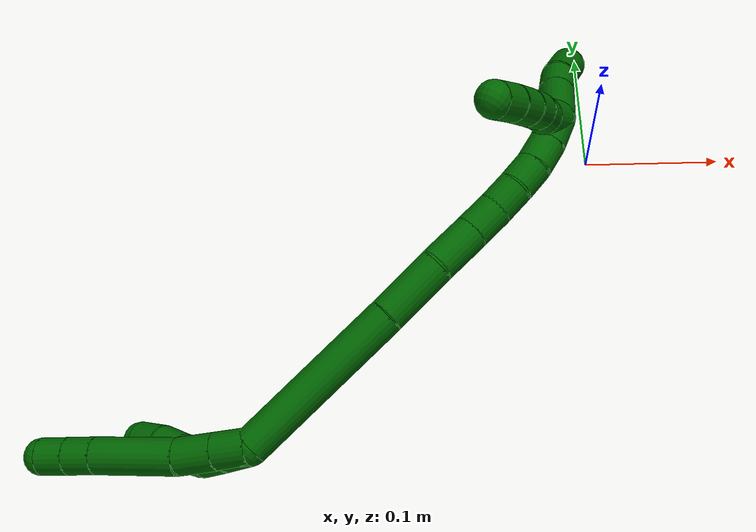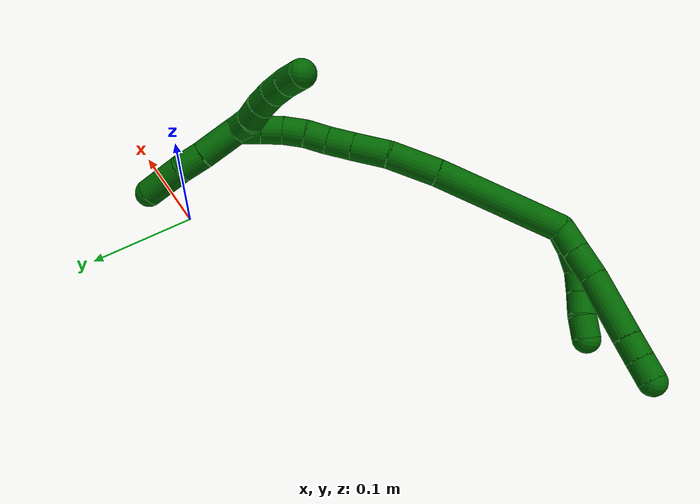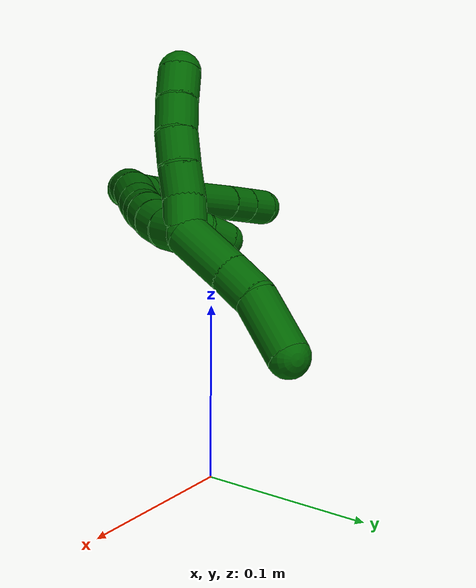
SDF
<sdf version="1.7">
 <world name="default">
  <model name="6">
   <static>0</static>
   <link name="6">
    <collision name="collision-cylinder-e_1_2_8">
     <pose>-0.005046 -0.008728 0.006077 0.962562 -0.443037 -0.234156</pose>
     <geometry><cylinder><radius>0.0125</radius><length>0.023543</length></cylinder></geometry>
     <surface>
      <friction><ode><mu>1.16</mu><mu2>1.16</mu2><slip1>0</slip1><slip2>0</slip2></ode></friction>
      <contact><ode><kp>1e+06</kp><kd>1</kd><max_vel>0</max_vel><min_depth>0.001</min_depth></ode></contact>
     </surface>
    </collision>
    <visual name="visual-cylinder-e_1_2_8">
     <pose>-0.005046 -0.008728 0.006077 0.962562 -0.443037 -0.234156</pose>
     <geometry><cylinder><radius>0.0125</radius><length>0.023543</length></cylinder></geometry>
     <material><ambient>0 0.392157 0.003922 1</ambient></material>
    </visual>
    <collision name="collision-cylinder-e_2_8_9">
     <pose>-0.015963 -0.027379 0.019191 0.953974 -0.449589 -0.235246</pose>
     <geometry><cylinder><radius>0.0125</radius><length>0.027015</length></cylinder></geometry>
     <surface>
      <friction><ode><mu>1.16</mu><mu2>1.16</mu2><slip1>0</slip1><slip2>0</slip2></ode></friction>
      <contact><ode><kp>1e+06</kp><kd>1</kd><max_vel>0</max_vel><min_depth>0.001</min_depth></ode></contact>
     </surface>
    </collision>
    <visual name="visual-cylinder-e_2_8_9">
     <pose>-0.015963 -0.027379 0.019191 0.953974 -0.449589 -0.235246</pose>
     <geometry><cylinder><radius>0.0125</radius><length>0.027015</length></cylinder></geometry>
     <material><ambient>0 0.392157 0.003922 1</ambient></material>
    </visual>
    <collision name="collision-cylinder-e_3_9_10">
     <pose>-0.036803 -0.059712 0.038275 1.07753 -0.53182 -0.322775</pose>
     <geometry><cylinder><radius>0.0125</radius><length>0.05904</length></cylinder></geometry>
     <surface>
      <friction><ode><mu>1.16</mu><mu2>1.16</mu2><slip1>0</slip1><slip2>0</slip2></ode></friction>
      <contact><ode><kp>1e+06</kp><kd>1</kd><max_vel>0</max_vel><min_depth>0.001</min_depth></ode></contact>
     </surface>
    </collision>
    <visual name="visual-cylinder-e_3_9_10">
     <pose>-0.036803 -0.059712 0.038275 1.07753 -0.53182 -0.322775</pose>
     <geometry><cylinder><radius>0.0125</radius><length>0.05904</length></cylinder></geometry>
     <material><ambient>0 0.392157 0.003922 1</ambient></material>
    </visual>
    <collision name="collision-cylinder-e_4_10_11">
     <pose>-0.056709 -0.089854 0.054669 1.05871 -0.507866 -0.301382</pose>
     <geometry><cylinder><radius>0.0125</radius><length>0.020302</length></cylinder></geometry>
     <surface>
      <friction><ode><mu>1.16</mu><mu2>1.16</mu2><slip1>0</slip1><slip2>0</slip2></ode></friction>
      <contact><ode><kp>1e+06</kp><kd>1</kd><max_vel>0</max_vel><min_depth>0.001</min_depth></ode></contact>
     </surface>
    </collision>
    <visual name="visual-cylinder-e_4_10_11">
     <pose>-0.056709 -0.089854 0.054669 1.05871 -0.507866 -0.301382</pose>
     <geometry><cylinder><radius>0.0125</radius><length>0.020302</length></cylinder></geometry>
     <material><ambient>0 0.392157 0.003922 1</ambient></material>
    </visual>
    <collision name="collision-cylinder-e_5_11_6">
     <pose>-0.066524 -0.105237 0.063335 1.05674 -0.506841 -0.300088</pose>
     <geometry><cylinder><radius>0.0125</radius><length>0.0201</length></cylinder></geometry>
     <surface>
      <friction><ode><mu>1.16</mu><mu2>1.16</mu2><slip1>0</slip1><slip2>0</slip2></ode></friction>
      <contact><ode><kp>1e+06</kp><kd>1</kd><max_vel>0</max_vel><min_depth>0.001</min_depth></ode></contact>
     </surface>
    </collision>
    <visual name="visual-cylinder-e_5_11_6">
     <pose>-0.066524 -0.105237 0.063335 1.05674 -0.506841 -0.300088</pose>
     <geometry><cylinder><radius>0.0125</radius><length>0.0201</length></cylinder></geometry>
     <material><ambient>0 0.392157 0.003922 1</ambient></material>
    </visual>
    <collision name="collision-cylinder-e_1_2_12">
     <pose>-0.002327 -0.008244 0.00516 1.01153 -0.234881 -0.130495</pose>
     <geometry><cylinder><radius>0.0125</radius><length>0.02</length></cylinder></geometry>
     <surface>
      <friction><ode><mu>1.16</mu><mu2>1.16</mu2><slip1>0</slip1><slip2>0</slip2></ode></friction>
      <contact><ode><kp>1e+06</kp><kd>1</kd><max_vel>0</max_vel><min_depth>0.001</min_depth></ode></contact>
     </surface>
    </collision>
    <visual name="visual-cylinder-e_1_2_12">
     <pose>-0.002327 -0.008244 0.00516 1.01153 -0.234881 -0.130495</pose>
     <geometry><cylinder><radius>0.0125</radius><length>0.02</length></cylinder></geometry>
     <material><ambient>0 0.392157 0.003922 1</ambient></material>
    </visual>
    <collision name="collision-cylinder-e_2_12_13">
     <pose>-0.005841 -0.025498 0.014492 1.13717 -0.118909 -0.076033</pose>
     <geometry><cylinder><radius>0.0125</radius><length>0.02</length></cylinder></geometry>
     <surface>
      <friction><ode><mu>1.16</mu><mu2>1.16</mu2><slip1>0</slip1><slip2>0</slip2></ode></friction>
      <contact><ode><kp>1e+06</kp><kd>1</kd><max_vel>0</max_vel><min_depth>0.001</min_depth></ode></contact>
     </surface>
    </collision>
    <visual name="visual-cylinder-e_2_12_13">
     <pose>-0.005841 -0.025498 0.014492 1.13717 -0.118909 -0.076033</pose>
     <geometry><cylinder><radius>0.0125</radius><length>0.02</length></cylinder></geometry>
     <material><ambient>0 0.392157 0.003922 1</ambient></material>
    </visual>
    <collision name="collision-cylinder-e_3_13_14">
     <pose>-0.010008 -0.043973 0.019905 1.44043 -0.302692 -0.266063</pose>
     <geometry><cylinder><radius>0.0125</radius><length>0.02</length></cylinder></geometry>
     <surface>
      <friction><ode><mu>1.16</mu><mu2>1.16</mu2><slip1>0</slip1><slip2>0</slip2></ode></friction>
      <contact><ode><kp>1e+06</kp><kd>1</kd><max_vel>0</max_vel><min_depth>0.001</min_depth></ode></contact>
     </surface>
    </collision>
    <visual name="visual-cylinder-e_3_13_14">
     <pose>-0.010008 -0.043973 0.019905 1.44043 -0.302692 -0.266063</pose>
     <geometry><cylinder><radius>0.0125</radius><length>0.02</length></cylinder></geometry>
     <material><ambient>0 0.392157 0.003922 1</ambient></material>
    </visual>
    <collision name="collision-cylinder-e_4_14_15">
     <pose>-0.016792 -0.062676 0.02155 1.52706 -0.390179 -0.373871</pose>
     <geometry><cylinder><radius>0.0125</radius><length>0.02</length></cylinder></geometry>
     <surface>
      <friction><ode><mu>1.16</mu><mu2>1.16</mu2><slip1>0</slip1><slip2>0</slip2></ode></friction>
      <contact><ode><kp>1e+06</kp><kd>1</kd><max_vel>0</max_vel><min_depth>0.001</min_depth></ode></contact>
     </surface>
    </collision>
    <visual name="visual-cylinder-e_4_14_15">
     <pose>-0.016792 -0.062676 0.02155 1.52706 -0.390179 -0.373871</pose>
     <geometry><cylinder><radius>0.0125</radius><length>0.02</length></cylinder></geometry>
     <material><ambient>0 0.392157 0.003922 1</ambient></material>
    </visual>
    <collision name="collision-cylinder-e_5_15_5">
     <pose>-0.023596 -0.081235 0.023995 1.35523 -0.304706 -0.245873</pose>
     <geometry><cylinder><radius>0.0125</radius><length>0.02</length></cylinder></geometry>
     <surface>
      <friction><ode><mu>1.16</mu><mu2>1.16</mu2><slip1>0</slip1><slip2>0</slip2></ode></friction>
      <contact><ode><kp>1e+06</kp><kd>1</kd><max_vel>0</max_vel><min_depth>0.001</min_depth></ode></contact>
     </surface>
    </collision>
    <visual name="visual-cylinder-e_5_15_5">
     <pose>-0.023596 -0.081235 0.023995 1.35523 -0.304706 -0.245873</pose>
     <geometry><cylinder><radius>0.0125</radius><length>0.02</length></cylinder></geometry>
     <material><ambient>0 0.392157 0.003922 1</ambient></material>
    </visual>
    <collision name="collision-cylinder-e_1_2_16">
     <pose>0.009026 0.017666 -0.05615 -2.83678 0.152157 -0.921331</pose>
     <geometry><cylinder><radius>0.0125</radius><length>0.119103</length></cylinder></geometry>
     <surface>
      <friction><ode><mu>1.16</mu><mu2>1.16</mu2><slip1>0</slip1><slip2>0</slip2></ode></friction>
      <contact><ode><kp>1e+06</kp><kd>1</kd><max_vel>0</max_vel><min_depth>0.001</min_depth></ode></contact>
     </surface>
    </collision>
    <visual name="visual-cylinder-e_1_2_16">
     <pose>0.009026 0.017666 -0.05615 -2.83678 0.152157 -0.921331</pose>
     <geometry><cylinder><radius>0.0125</radius><length>0.119103</length></cylinder></geometry>
     <material><ambient>0 0.392157 0.003922 1</ambient></material>
    </visual>
    <collision name="collision-cylinder-e_2_16_17">
     <pose>0.021759 0.040499 -0.134059 -2.90842 0.164249 -1.22519</pose>
     <geometry><cylinder><radius>0.0125</radius><length>0.045337</length></cylinder></geometry>
     <surface>
      <friction><ode><mu>1.16</mu><mu2>1.16</mu2><slip1>0</slip1><slip2>0</slip2></ode></friction>
      <contact><ode><kp>1e+06</kp><kd>1</kd><max_vel>0</max_vel><min_depth>0.001</min_depth></ode></contact>
     </surface>
    </collision>
    <visual name="visual-cylinder-e_2_16_17">
     <pose>0.021759 0.040499 -0.134059 -2.90842 0.164249 -1.22519</pose>
     <geometry><cylinder><radius>0.0125</radius><length>0.045337</length></cylinder></geometry>
     <material><ambient>0 0.392157 0.003922 1</ambient></material>
    </visual>
    <collision name="collision-cylinder-e_3_17_18">
     <pose>0.029625 0.047259 -0.171439 -3.04 0.258937 -2.39704</pose>
     <geometry><cylinder><radius>0.0125</radius><length>0.032489</length></cylinder></geometry>
     <surface>
      <friction><ode><mu>1.16</mu><mu2>1.16</mu2><slip1>0</slip1><slip2>0</slip2></ode></friction>
      <contact><ode><kp>1e+06</kp><kd>1</kd><max_vel>0</max_vel><min_depth>0.001</min_depth></ode></contact>
     </surface>
    </collision>
    <visual name="visual-cylinder-e_3_17_18">
     <pose>0.029625 0.047259 -0.171439 -3.04 0.258937 -2.39704</pose>
     <geometry><cylinder><radius>0.0125</radius><length>0.032489</length></cylinder></geometry>
     <material><ambient>0 0.392157 0.003922 1</ambient></material>
    </visual>
    <collision name="collision-cylinder-e_4_18_19">
     <pose>0.03642 0.050146 -0.198102 -3.02484 0.232807 -2.21461</pose>
     <geometry><cylinder><radius>0.0125</radius><length>0.022849</length></cylinder></geometry>
     <surface>
      <friction><ode><mu>1.16</mu><mu2>1.16</mu2><slip1>0</slip1><slip2>0</slip2></ode></friction>
      <contact><ode><kp>1e+06</kp><kd>1</kd><max_vel>0</max_vel><min_depth>0.001</min_depth></ode></contact>
     </surface>
    </collision>
    <visual name="visual-cylinder-e_4_18_19">
     <pose>0.03642 0.050146 -0.198102 -3.02484 0.232807 -2.21461</pose>
     <geometry><cylinder><radius>0.0125</radius><length>0.022849</length></cylinder></geometry>
     <material><ambient>0 0.392157 0.003922 1</ambient></material>
    </visual>
    <collision name="collision-cylinder-e_5_19_20">
     <pose>0.040655 0.053187 -0.218971 -2.9658 0.158835 -1.46908</pose>
     <geometry><cylinder><radius>0.0125</radius><length>0.02022</length></cylinder></geometry>
     <surface>
      <friction><ode><mu>1.16</mu><mu2>1.16</mu2><slip1>0</slip1><slip2>0</slip2></ode></friction>
      <contact><ode><kp>1e+06</kp><kd>1</kd><max_vel>0</max_vel><min_depth>0.001</min_depth></ode></contact>
     </surface>
    </collision>
    <visual name="visual-cylinder-e_5_19_20">
     <pose>0.040655 0.053187 -0.218971 -2.9658 0.158835 -1.46908</pose>
     <geometry><cylinder><radius>0.0125</radius><length>0.02022</length></cylinder></geometry>
     <material><ambient>0 0.392157 0.003922 1</ambient></material>
    </visual>
    <collision name="collision-cylinder-e_6_20_21">
     <pose>0.044134 0.055152 -0.23862 -3.11921 0.189113 -2.90671</pose>
     <geometry><cylinder><radius>0.0125</radius><length>0.020001</length></cylinder></geometry>
     <surface>
      <friction><ode><mu>1.16</mu><mu2>1.16</mu2><slip1>0</slip1><slip2>0</slip2></ode></friction>
      <contact><ode><kp>1e+06</kp><kd>1</kd><max_vel>0</max_vel><min_depth>0.001</min_depth></ode></contact>
     </surface>
    </collision>
    <visual name="visual-cylinder-e_6_20_21">
     <pose>0.044134 0.055152 -0.23862 -3.11921 0.189113 -2.90671</pose>
     <geometry><cylinder><radius>0.0125</radius><length>0.020001</length></cylinder></geometry>
     <material><ambient>0 0.392157 0.003922 1</ambient></material>
    </visual>
    <collision name="collision-cylinder-e_7_21_22">
     <pose>0.046976 0.054366 -0.258342 3.04034 0.096278 1.52032</pose>
     <geometry><cylinder><radius>0.0125</radius><length>0.020001</length></cylinder></geometry>
     <surface>
      <friction><ode><mu>1.16</mu><mu2>1.16</mu2><slip1>0</slip1><slip2>0</slip2></ode></friction>
      <contact><ode><kp>1e+06</kp><kd>1</kd><max_vel>0</max_vel><min_depth>0.001</min_depth></ode></contact>
     </surface>
    </collision>
    <visual name="visual-cylinder-e_7_21_22">
     <pose>0.046976 0.054366 -0.258342 3.04034 0.096278 1.52032</pose>
     <geometry><cylinder><radius>0.0125</radius><length>0.020001</length></cylinder></geometry>
     <material><ambient>0 0.392157 0.003922 1</ambient></material>
    </visual>
    <collision name="collision-cylinder-e_8_22_1">
     <pose>0.047326 0.052053 -0.278141 3.01029 -0.061075 -0.869906</pose>
     <geometry><cylinder><radius>0.0125</radius><length>0.02</length></cylinder></geometry>
     <surface>
      <friction><ode><mu>1.16</mu><mu2>1.16</mu2><slip1>0</slip1><slip2>0</slip2></ode></friction>
      <contact><ode><kp>1e+06</kp><kd>1</kd><max_vel>0</max_vel><min_depth>0.001</min_depth></ode></contact>
     </surface>
    </collision>
    <visual name="visual-cylinder-e_8_22_1">
     <pose>0.047326 0.052053 -0.278141 3.01029 -0.061075 -0.869906</pose>
     <geometry><cylinder><radius>0.0125</radius><length>0.02</length></cylinder></geometry>
     <material><ambient>0 0.392157 0.003922 1</ambient></material>
    </visual>
    <collision name="collision-cylinder-e_1_1_23">
     <pose>0.049023 0.038036 -0.301553 2.38692 0.123702 0.310013</pose>
     <geometry><cylinder><radius>0.0125</radius><length>0.037393</length></cylinder></geometry>
     <surface>
      <friction><ode><mu>1.16</mu><mu2>1.16</mu2><slip1>0</slip1><slip2>0</slip2></ode></friction>
      <contact><ode><kp>1e+06</kp><kd>1</kd><max_vel>0</max_vel><min_depth>0.001</min_depth></ode></contact>
     </surface>
    </collision>
    <visual name="visual-cylinder-e_1_1_23">
     <pose>0.049023 0.038036 -0.301553 2.38692 0.123702 0.310013</pose>
     <geometry><cylinder><radius>0.0125</radius><length>0.037393</length></cylinder></geometry>
     <material><ambient>0 0.392157 0.003922 1</ambient></material>
    </visual>
    <collision name="collision-cylinder-e_2_23_24">
     <pose>0.053151 0.018202 -0.323708 2.45208 0.161181 0.442464</pose>
     <geometry><cylinder><radius>0.0125</radius><length>0.022688</length></cylinder></geometry>
     <surface>
      <friction><ode><mu>1.16</mu><mu2>1.16</mu2><slip1>0</slip1><slip2>0</slip2></ode></friction>
      <contact><ode><kp>1e+06</kp><kd>1</kd><max_vel>0</max_vel><min_depth>0.001</min_depth></ode></contact>
     </surface>
    </collision>
    <visual name="visual-cylinder-e_2_23_24">
     <pose>0.053151 0.018202 -0.323708 2.45208 0.161181 0.442464</pose>
     <geometry><cylinder><radius>0.0125</radius><length>0.022688</length></cylinder></geometry>
     <material><ambient>0 0.392157 0.003922 1</ambient></material>
    </visual>
    <collision name="collision-cylinder-e_3_24_4">
     <pose>0.063022 -0.001593 -0.345499 2.37476 0.415191 0.962443</pose>
     <geometry><cylinder><radius>0.0125</radius><length>0.039918</length></cylinder></geometry>
     <surface>
      <friction><ode><mu>1.16</mu><mu2>1.16</mu2><slip1>0</slip1><slip2>0</slip2></ode></friction>
      <contact><ode><kp>1e+06</kp><kd>1</kd><max_vel>0</max_vel><min_depth>0.001</min_depth></ode></contact>
     </surface>
    </collision>
    <visual name="visual-cylinder-e_3_24_4">
     <pose>0.063022 -0.001593 -0.345499 2.37476 0.415191 0.962443</pose>
     <geometry><cylinder><radius>0.0125</radius><length>0.039918</length></cylinder></geometry>
     <material><ambient>0 0.392157 0.003922 1</ambient></material>
    </visual>
    <collision name="collision-cylinder-e_1_1_25">
     <pose>0.039226 0.055319 -0.283241 -0.761567 -0.846509 0.35684</pose>
     <geometry><cylinder><radius>0.0125</radius><length>0.02</length></cylinder></geometry>
     <surface>
      <friction><ode><mu>1.16</mu><mu2>1.16</mu2><slip1>0</slip1><slip2>0</slip2></ode></friction>
      <contact><ode><kp>1e+06</kp><kd>1</kd><max_vel>0</max_vel><min_depth>0.001</min_depth></ode></contact>
     </surface>
    </collision>
    <visual name="visual-cylinder-e_1_1_25">
     <pose>0.039226 0.055319 -0.283241 -0.761567 -0.846509 0.35684</pose>
     <geometry><cylinder><radius>0.0125</radius><length>0.02</length></cylinder></geometry>
     <material><ambient>0 0.392157 0.003922 1</ambient></material>
    </visual>
    <collision name="collision-cylinder-e_2_25_26">
     <pose>0.024847 0.066265 -0.274995 -1.07464 -0.760034 0.467268</pose>
     <geometry><cylinder><radius>0.0125</radius><length>0.02</length></cylinder></geometry>
     <surface>
      <friction><ode><mu>1.16</mu><mu2>1.16</mu2><slip1>0</slip1><slip2>0</slip2></ode></friction>
      <contact><ode><kp>1e+06</kp><kd>1</kd><max_vel>0</max_vel><min_depth>0.001</min_depth></ode></contact>
     </surface>
    </collision>
    <visual name="visual-cylinder-e_2_25_26">
     <pose>0.024847 0.066265 -0.274995 -1.07464 -0.760034 0.467268</pose>
     <geometry><cylinder><radius>0.0125</radius><length>0.02</length></cylinder></geometry>
     <material><ambient>0 0.392157 0.003922 1</ambient></material>
    </visual>
    <collision name="collision-cylinder-e_3_26_27">
     <pose>0.010793 0.078145 -0.267259 -0.909432 -0.798666 0.406917</pose>
     <geometry><cylinder><radius>0.0125</radius><length>0.02</length></cylinder></geometry>
     <surface>
      <friction><ode><mu>1.16</mu><mu2>1.16</mu2><slip1>0</slip1><slip2>0</slip2></ode></friction>
      <contact><ode><kp>1e+06</kp><kd>1</kd><max_vel>0</max_vel><min_depth>0.001</min_depth></ode></contact>
     </surface>
    </collision>
    <visual name="visual-cylinder-e_3_26_27">
     <pose>0.010793 0.078145 -0.267259 -0.909432 -0.798666 0.406917</pose>
     <geometry><cylinder><radius>0.0125</radius><length>0.02</length></cylinder></geometry>
     <material><ambient>0 0.392157 0.003922 1</ambient></material>
    </visual>
    <collision name="collision-cylinder-e_4_27_28">
     <pose>-0.004168 0.087994 -0.258465 -0.766749 -0.894272 0.382099</pose>
     <geometry><cylinder><radius>0.0125</radius><length>0.02</length></cylinder></geometry>
     <surface>
      <friction><ode><mu>1.16</mu><mu2>1.16</mu2><slip1>0</slip1><slip2>0</slip2></ode></friction>
      <contact><ode><kp>1e+06</kp><kd>1</kd><max_vel>0</max_vel><min_depth>0.001</min_depth></ode></contact>
     </surface>
    </collision>
    <visual name="visual-cylinder-e_4_27_28">
     <pose>-0.004168 0.087994 -0.258465 -0.766749 -0.894272 0.382099</pose>
     <geometry><cylinder><radius>0.0125</radius><length>0.02</length></cylinder></geometry>
     <material><ambient>0 0.392157 0.003922 1</ambient></material>
    </visual>
    <collision name="collision-cylinder-e_5_28_3">
     <pose>-0.019923 0.095824 -0.249004 -0.613257 -0.920219 0.31128</pose>
     <geometry><cylinder><radius>0.0125</radius><length>0.02</length></cylinder></geometry>
     <surface>
      <friction><ode><mu>1.16</mu><mu2>1.16</mu2><slip1>0</slip1><slip2>0</slip2></ode></friction>
      <contact><ode><kp>1e+06</kp><kd>1</kd><max_vel>0</max_vel><min_depth>0.001</min_depth></ode></contact>
     </surface>
    </collision>
    <visual name="visual-cylinder-e_5_28_3">
     <pose>-0.019923 0.095824 -0.249004 -0.613257 -0.920219 0.31128</pose>
     <geometry><cylinder><radius>0.0125</radius><length>0.02</length></cylinder></geometry>
     <material><ambient>0 0.392157 0.003922 1</ambient></material>
    </visual>
    <collision name="collision-sphere-3">
     <pose>-0.027881 0.099309 -0.244051 0 -0 0</pose>
     <geometry><sphere><radius>0.0125</radius></sphere></geometry>
     <surface>
      <friction><ode><mu>1.16</mu><mu2>1.16</mu2><slip1>0</slip1><slip2>0</slip2></ode></friction>
      <contact><ode><kp>1e+06</kp><kd>1</kd><max_vel>0</max_vel><min_depth>0.001</min_depth></ode></contact>
     </surface>
    </collision>
    <visual name="visual-sphere-3">
     <pose>-0.027881 0.099309 -0.244051 0 -0 0</pose>
     <geometry><sphere><radius>0.0125</radius></sphere></geometry>
     <material><ambient>0 0.392157 0.003922 1</ambient></material>
    </visual>
    <collision name="collision-sphere-28">
     <pose>-0.011966 0.092338 -0.253957 0 -0 0</pose>
     <geometry><sphere><radius>0.0125</radius></sphere></geometry>
     <surface>
      <friction><ode><mu>1.16</mu><mu2>1.16</mu2><slip1>0</slip1><slip2>0</slip2></ode></friction>
      <contact><ode><kp>1e+06</kp><kd>1</kd><max_vel>0</max_vel><min_depth>0.001</min_depth></ode></contact>
     </surface>
    </collision>
    <visual name="visual-sphere-28">
     <pose>-0.011966 0.092338 -0.253957 0 -0 0</pose>
     <geometry><sphere><radius>0.0125</radius></sphere></geometry>
     <material><ambient>0 0.392157 0.003922 1</ambient></material>
    </visual>
    <collision name="collision-sphere-27">
     <pose>0.003629 0.08365 -0.262974 0 -0 0</pose>
     <geometry><sphere><radius>0.0125</radius></sphere></geometry>
     <surface>
      <friction><ode><mu>1.16</mu><mu2>1.16</mu2><slip1>0</slip1><slip2>0</slip2></ode></friction>
      <contact><ode><kp>1e+06</kp><kd>1</kd><max_vel>0</max_vel><min_depth>0.001</min_depth></ode></contact>
     </surface>
    </collision>
    <visual name="visual-sphere-27">
     <pose>0.003629 0.08365 -0.262974 0 -0 0</pose>
     <geometry><sphere><radius>0.0125</radius></sphere></geometry>
     <material><ambient>0 0.392157 0.003922 1</ambient></material>
    </visual>
    <collision name="collision-sphere-26">
     <pose>0.017958 0.072639 -0.271544 0 -0 0</pose>
     <geometry><sphere><radius>0.0125</radius></sphere></geometry>
     <surface>
      <friction><ode><mu>1.16</mu><mu2>1.16</mu2><slip1>0</slip1><slip2>0</slip2></ode></friction>
      <contact><ode><kp>1e+06</kp><kd>1</kd><max_vel>0</max_vel><min_depth>0.001</min_depth></ode></contact>
     </surface>
    </collision>
    <visual name="visual-sphere-26">
     <pose>0.017958 0.072639 -0.271544 0 -0 0</pose>
     <geometry><sphere><radius>0.0125</radius></sphere></geometry>
     <material><ambient>0 0.392157 0.003922 1</ambient></material>
    </visual>
    <collision name="collision-sphere-25">
     <pose>0.031737 0.059891 -0.278445 0 -0 0</pose>
     <geometry><sphere><radius>0.0125</radius></sphere></geometry>
     <surface>
      <friction><ode><mu>1.16</mu><mu2>1.16</mu2><slip1>0</slip1><slip2>0</slip2></ode></friction>
      <contact><ode><kp>1e+06</kp><kd>1</kd><max_vel>0</max_vel><min_depth>0.001</min_depth></ode></contact>
     </surface>
    </collision>
    <visual name="visual-sphere-25">
     <pose>0.031737 0.059891 -0.278445 0 -0 0</pose>
     <geometry><sphere><radius>0.0125</radius></sphere></geometry>
     <material><ambient>0 0.392157 0.003922 1</ambient></material>
    </visual>
    <collision name="collision-sphere-4">
     <pose>0.071073 -0.014265 -0.358651 0 -0 0</pose>
     <geometry><sphere><radius>0.0125</radius></sphere></geometry>
     <surface>
      <friction><ode><mu>1.16</mu><mu2>1.16</mu2><slip1>0</slip1><slip2>0</slip2></ode></friction>
      <contact><ode><kp>1e+06</kp><kd>1</kd><max_vel>0</max_vel><min_depth>0.001</min_depth></ode></contact>
     </surface>
    </collision>
    <visual name="visual-sphere-4">
     <pose>0.071073 -0.014265 -0.358651 0 -0 0</pose>
     <geometry><sphere><radius>0.0125</radius></sphere></geometry>
     <material><ambient>0 0.392157 0.003922 1</ambient></material>
    </visual>
    <collision name="collision-sphere-24">
     <pose>0.054971 0.011079 -0.332348 0 -0 0</pose>
     <geometry><sphere><radius>0.0125</radius></sphere></geometry>
     <surface>
      <friction><ode><mu>1.16</mu><mu2>1.16</mu2><slip1>0</slip1><slip2>0</slip2></ode></friction>
      <contact><ode><kp>1e+06</kp><kd>1</kd><max_vel>0</max_vel><min_depth>0.001</min_depth></ode></contact>
     </surface>
    </collision>
    <visual name="visual-sphere-24">
     <pose>0.054971 0.011079 -0.332348 0 -0 0</pose>
     <geometry><sphere><radius>0.0125</radius></sphere></geometry>
     <material><ambient>0 0.392157 0.003922 1</ambient></material>
    </visual>
    <collision name="collision-sphere-23">
     <pose>0.05133 0.025326 -0.315069 0 -0 0</pose>
     <geometry><sphere><radius>0.0125</radius></sphere></geometry>
     <surface>
      <friction><ode><mu>1.16</mu><mu2>1.16</mu2><slip1>0</slip1><slip2>0</slip2></ode></friction>
      <contact><ode><kp>1e+06</kp><kd>1</kd><max_vel>0</max_vel><min_depth>0.001</min_depth></ode></contact>
     </surface>
    </collision>
    <visual name="visual-sphere-23">
     <pose>0.05133 0.025326 -0.315069 0 -0 0</pose>
     <geometry><sphere><radius>0.0125</radius></sphere></geometry>
     <material><ambient>0 0.392157 0.003922 1</ambient></material>
    </visual>
    <collision name="collision-sphere-1">
     <pose>0.046716 0.050746 -0.288036 0 -0 0</pose>
     <geometry><sphere><radius>0.0125</radius></sphere></geometry>
     <surface>
      <friction><ode><mu>1.16</mu><mu2>1.16</mu2><slip1>0</slip1><slip2>0</slip2></ode></friction>
      <contact><ode><kp>1e+06</kp><kd>1</kd><max_vel>0</max_vel><min_depth>0.001</min_depth></ode></contact>
     </surface>
    </collision>
    <visual name="visual-sphere-1">
     <pose>0.046716 0.050746 -0.288036 0 -0 0</pose>
     <geometry><sphere><radius>0.0125</radius></sphere></geometry>
     <material><ambient>0 0.392157 0.003922 1</ambient></material>
    </visual>
    <collision name="collision-sphere-22">
     <pose>0.047937 0.05336 -0.268245 0 -0 0</pose>
     <geometry><sphere><radius>0.0125</radius></sphere></geometry>
     <surface>
      <friction><ode><mu>1.16</mu><mu2>1.16</mu2><slip1>0</slip1><slip2>0</slip2></ode></friction>
      <contact><ode><kp>1e+06</kp><kd>1</kd><max_vel>0</max_vel><min_depth>0.001</min_depth></ode></contact>
     </surface>
    </collision>
    <visual name="visual-sphere-22">
     <pose>0.047937 0.05336 -0.268245 0 -0 0</pose>
     <geometry><sphere><radius>0.0125</radius></sphere></geometry>
     <material><ambient>0 0.392157 0.003922 1</ambient></material>
    </visual>
    <collision name="collision-sphere-21">
     <pose>0.046014 0.055372 -0.248439 0 -0 0</pose>
     <geometry><sphere><radius>0.0125</radius></sphere></geometry>
     <surface>
      <friction><ode><mu>1.16</mu><mu2>1.16</mu2><slip1>0</slip1><slip2>0</slip2></ode></friction>
      <contact><ode><kp>1e+06</kp><kd>1</kd><max_vel>0</max_vel><min_depth>0.001</min_depth></ode></contact>
     </surface>
    </collision>
    <visual name="visual-sphere-21">
     <pose>0.046014 0.055372 -0.248439 0 -0 0</pose>
     <geometry><sphere><radius>0.0125</radius></sphere></geometry>
     <material><ambient>0 0.392157 0.003922 1</ambient></material>
    </visual>
    <collision name="collision-sphere-6">
     <pose>-0.071403 -0.112888 0.067656 0 -0 0</pose>
     <geometry><sphere><radius>0.0125</radius></sphere></geometry>
     <surface>
      <friction><ode><mu>1.16</mu><mu2>1.16</mu2><slip1>0</slip1><slip2>0</slip2></ode></friction>
      <contact><ode><kp>1e+06</kp><kd>1</kd><max_vel>0</max_vel><min_depth>0.001</min_depth></ode></contact>
     </surface>
    </collision>
    <visual name="visual-sphere-6">
     <pose>-0.071403 -0.112888 0.067656 0 -0 0</pose>
     <geometry><sphere><radius>0.0125</radius></sphere></geometry>
     <material><ambient>0 0.392157 0.003922 1</ambient></material>
    </visual>
    <collision name="collision-sphere-11">
     <pose>-0.061645 -0.097586 0.059015 0 -0 0</pose>
     <geometry><sphere><radius>0.0125</radius></sphere></geometry>
     <surface>
      <friction><ode><mu>1.16</mu><mu2>1.16</mu2><slip1>0</slip1><slip2>0</slip2></ode></friction>
      <contact><ode><kp>1e+06</kp><kd>1</kd><max_vel>0</max_vel><min_depth>0.001</min_depth></ode></contact>
     </surface>
    </collision>
    <visual name="visual-sphere-11">
     <pose>-0.061645 -0.097586 0.059015 0 -0 0</pose>
     <geometry><sphere><radius>0.0125</radius></sphere></geometry>
     <material><ambient>0 0.392157 0.003922 1</ambient></material>
    </visual>
    <collision name="collision-sphere-10">
     <pose>-0.051772 -0.082121 0.050322 0 -0 0</pose>
     <geometry><sphere><radius>0.0125</radius></sphere></geometry>
     <surface>
      <friction><ode><mu>1.16</mu><mu2>1.16</mu2><slip1>0</slip1><slip2>0</slip2></ode></friction>
      <contact><ode><kp>1e+06</kp><kd>1</kd><max_vel>0</max_vel><min_depth>0.001</min_depth></ode></contact>
     </surface>
    </collision>
    <visual name="visual-sphere-10">
     <pose>-0.051772 -0.082121 0.050322 0 -0 0</pose>
     <geometry><sphere><radius>0.0125</radius></sphere></geometry>
     <material><ambient>0 0.392157 0.003922 1</ambient></material>
    </visual>
    <collision name="collision-sphere-9">
     <pose>-0.021833 -0.037302 0.026228 0 -0 0</pose>
     <geometry><sphere><radius>0.0125</radius></sphere></geometry>
     <surface>
      <friction><ode><mu>1.16</mu><mu2>1.16</mu2><slip1>0</slip1><slip2>0</slip2></ode></friction>
      <contact><ode><kp>1e+06</kp><kd>1</kd><max_vel>0</max_vel><min_depth>0.001</min_depth></ode></contact>
     </surface>
    </collision>
    <visual name="visual-sphere-9">
     <pose>-0.021833 -0.037302 0.026228 0 -0 0</pose>
     <geometry><sphere><radius>0.0125</radius></sphere></geometry>
     <material><ambient>0 0.392157 0.003922 1</ambient></material>
    </visual>
    <collision name="collision-sphere-2">
     <geometry><sphere><radius>0.0125</radius></sphere></geometry>
     <surface>
      <friction><ode><mu>1.16</mu><mu2>1.16</mu2><slip1>0</slip1><slip2>0</slip2></ode></friction>
      <contact><ode><kp>1e+06</kp><kd>1</kd><max_vel>0</max_vel><min_depth>0.001</min_depth></ode></contact>
     </surface>
    </collision>
    <visual name="visual-sphere-2">
     <geometry><sphere><radius>0.0125</radius></sphere></geometry>
     <material><ambient>0 0.392157 0.003922 1</ambient></material>
    </visual>
    <collision name="collision-sphere-19">
     <pose>0.039056 0.051441 -0.209142 0 -0 0</pose>
     <geometry><sphere><radius>0.0125</radius></sphere></geometry>
     <surface>
      <friction><ode><mu>1.16</mu><mu2>1.16</mu2><slip1>0</slip1><slip2>0</slip2></ode></friction>
      <contact><ode><kp>1e+06</kp><kd>1</kd><max_vel>0</max_vel><min_depth>0.001</min_depth></ode></contact>
     </surface>
    </collision>
    <visual name="visual-sphere-19">
     <pose>0.039056 0.051441 -0.209142 0 -0 0</pose>
     <geometry><sphere><radius>0.0125</radius></sphere></geometry>
     <material><ambient>0 0.392157 0.003922 1</ambient></material>
    </visual>
    <collision name="collision-sphere-8">
     <pose>-0.010093 -0.017456 0.012154 0 -0 0</pose>
     <geometry><sphere><radius>0.0125</radius></sphere></geometry>
     <surface>
      <friction><ode><mu>1.16</mu><mu2>1.16</mu2><slip1>0</slip1><slip2>0</slip2></ode></friction>
      <contact><ode><kp>1e+06</kp><kd>1</kd><max_vel>0</max_vel><min_depth>0.001</min_depth></ode></contact>
     </surface>
    </collision>
    <visual name="visual-sphere-8">
     <pose>-0.010093 -0.017456 0.012154 0 -0 0</pose>
     <geometry><sphere><radius>0.0125</radius></sphere></geometry>
     <material><ambient>0 0.392157 0.003922 1</ambient></material>
    </visual>
    <collision name="collision-sphere-12">
     <pose>-0.004655 -0.016487 0.01032 0 -0 0</pose>
     <geometry><sphere><radius>0.0125</radius></sphere></geometry>
     <surface>
      <friction><ode><mu>1.16</mu><mu2>1.16</mu2><slip1>0</slip1><slip2>0</slip2></ode></friction>
      <contact><ode><kp>1e+06</kp><kd>1</kd><max_vel>0</max_vel><min_depth>0.001</min_depth></ode></contact>
     </surface>
    </collision>
    <visual name="visual-sphere-12">
     <pose>-0.004655 -0.016487 0.01032 0 -0 0</pose>
     <geometry><sphere><radius>0.0125</radius></sphere></geometry>
     <material><ambient>0 0.392157 0.003922 1</ambient></material>
    </visual>
    <collision name="collision-sphere-13">
     <pose>-0.007027 -0.034508 0.018664 0 -0 0</pose>
     <geometry><sphere><radius>0.0125</radius></sphere></geometry>
     <surface>
      <friction><ode><mu>1.16</mu><mu2>1.16</mu2><slip1>0</slip1><slip2>0</slip2></ode></friction>
      <contact><ode><kp>1e+06</kp><kd>1</kd><max_vel>0</max_vel><min_depth>0.001</min_depth></ode></contact>
     </surface>
    </collision>
    <visual name="visual-sphere-13">
     <pose>-0.007027 -0.034508 0.018664 0 -0 0</pose>
     <geometry><sphere><radius>0.0125</radius></sphere></geometry>
     <material><ambient>0 0.392157 0.003922 1</ambient></material>
    </visual>
    <collision name="collision-sphere-14">
     <pose>-0.012989 -0.053437 0.021146 0 -0 0</pose>
     <geometry><sphere><radius>0.0125</radius></sphere></geometry>
     <surface>
      <friction><ode><mu>1.16</mu><mu2>1.16</mu2><slip1>0</slip1><slip2>0</slip2></ode></friction>
      <contact><ode><kp>1e+06</kp><kd>1</kd><max_vel>0</max_vel><min_depth>0.001</min_depth></ode></contact>
     </surface>
    </collision>
    <visual name="visual-sphere-14">
     <pose>-0.012989 -0.053437 0.021146 0 -0 0</pose>
     <geometry><sphere><radius>0.0125</radius></sphere></geometry>
     <material><ambient>0 0.392157 0.003922 1</ambient></material>
    </visual>
    <collision name="collision-sphere-15">
     <pose>-0.020596 -0.071916 0.021954 0 -0 0</pose>
     <geometry><sphere><radius>0.0125</radius></sphere></geometry>
     <surface>
      <friction><ode><mu>1.16</mu><mu2>1.16</mu2><slip1>0</slip1><slip2>0</slip2></ode></friction>
      <contact><ode><kp>1e+06</kp><kd>1</kd><max_vel>0</max_vel><min_depth>0.001</min_depth></ode></contact>
     </surface>
    </collision>
    <visual name="visual-sphere-15">
     <pose>-0.020596 -0.071916 0.021954 0 -0 0</pose>
     <geometry><sphere><radius>0.0125</radius></sphere></geometry>
     <material><ambient>0 0.392157 0.003922 1</ambient></material>
    </visual>
    <collision name="collision-sphere-5">
     <pose>-0.026596 -0.090553 0.026035 0 -0 0</pose>
     <geometry><sphere><radius>0.0125</radius></sphere></geometry>
     <surface>
      <friction><ode><mu>1.16</mu><mu2>1.16</mu2><slip1>0</slip1><slip2>0</slip2></ode></friction>
      <contact><ode><kp>1e+06</kp><kd>1</kd><max_vel>0</max_vel><min_depth>0.001</min_depth></ode></contact>
     </surface>
    </collision>
    <visual name="visual-sphere-5">
     <pose>-0.026596 -0.090553 0.026035 0 -0 0</pose>
     <geometry><sphere><radius>0.0125</radius></sphere></geometry>
     <material><ambient>0 0.392157 0.003922 1</ambient></material>
    </visual>
    <collision name="collision-sphere-16">
     <pose>0.018053 0.035331 -0.112301 0 -0 0</pose>
     <geometry><sphere><radius>0.0125</radius></sphere></geometry>
     <surface>
      <friction><ode><mu>1.16</mu><mu2>1.16</mu2><slip1>0</slip1><slip2>0</slip2></ode></friction>
      <contact><ode><kp>1e+06</kp><kd>1</kd><max_vel>0</max_vel><min_depth>0.001</min_depth></ode></contact>
     </surface>
    </collision>
    <visual name="visual-sphere-16">
     <pose>0.018053 0.035331 -0.112301 0 -0 0</pose>
     <geometry><sphere><radius>0.0125</radius></sphere></geometry>
     <material><ambient>0 0.392157 0.003922 1</ambient></material>
    </visual>
    <collision name="collision-sphere-17">
     <pose>0.025466 0.045666 -0.155817 0 -0 0</pose>
     <geometry><sphere><radius>0.0125</radius></sphere></geometry>
     <surface>
      <friction><ode><mu>1.16</mu><mu2>1.16</mu2><slip1>0</slip1><slip2>0</slip2></ode></friction>
      <contact><ode><kp>1e+06</kp><kd>1</kd><max_vel>0</max_vel><min_depth>0.001</min_depth></ode></contact>
     </surface>
    </collision>
    <visual name="visual-sphere-17">
     <pose>0.025466 0.045666 -0.155817 0 -0 0</pose>
     <geometry><sphere><radius>0.0125</radius></sphere></geometry>
     <material><ambient>0 0.392157 0.003922 1</ambient></material>
    </visual>
    <collision name="collision-sphere-18">
     <pose>0.033785 0.048851 -0.187061 0 -0 0</pose>
     <geometry><sphere><radius>0.0125</radius></sphere></geometry>
     <surface>
      <friction><ode><mu>1.16</mu><mu2>1.16</mu2><slip1>0</slip1><slip2>0</slip2></ode></friction>
      <contact><ode><kp>1e+06</kp><kd>1</kd><max_vel>0</max_vel><min_depth>0.001</min_depth></ode></contact>
     </surface>
    </collision>
    <visual name="visual-sphere-18">
     <pose>0.033785 0.048851 -0.187061 0 -0 0</pose>
     <geometry><sphere><radius>0.0125</radius></sphere></geometry>
     <material><ambient>0 0.392157 0.003922 1</ambient></material>
    </visual>
    <collision name="collision-sphere-20">
     <pose>0.042254 0.054933 -0.2288 0 -0 0</pose>
     <geometry><sphere><radius>0.0125</radius></sphere></geometry>
     <surface>
      <friction><ode><mu>1.16</mu><mu2>1.16</mu2><slip1>0</slip1><slip2>0</slip2></ode></friction>
      <contact><ode><kp>1e+06</kp><kd>1</kd><max_vel>0</max_vel><min_depth>0.001</min_depth></ode></contact>
     </surface>
    </collision>
    <visual name="visual-sphere-20">
     <pose>0.042254 0.054933 -0.2288 0 -0 0</pose>
     <geometry><sphere><radius>0.0125</radius></sphere></geometry>
     <material><ambient>0 0.392157 0.003922 1</ambient></material>
    </visual>
    <inertial>
     <pose>0.01018 0.010038 -0.126476 0 -0 0</pose>
     <mass>0.75</mass>
     <inertia><ixx>-6e-06</ixx><ixy>0</ixy><ixz>0</ixz><iyy>-0.0002</iyy><iyz>0</iyz><izz>-3.9e-05</izz></inertia>
    </inertial>
   </link>
   <pose>-0.242123 -0.25089 0.06289 1.83608 0.74292 -0.363099</pose>
  </model>
 </world>
</sdf>
